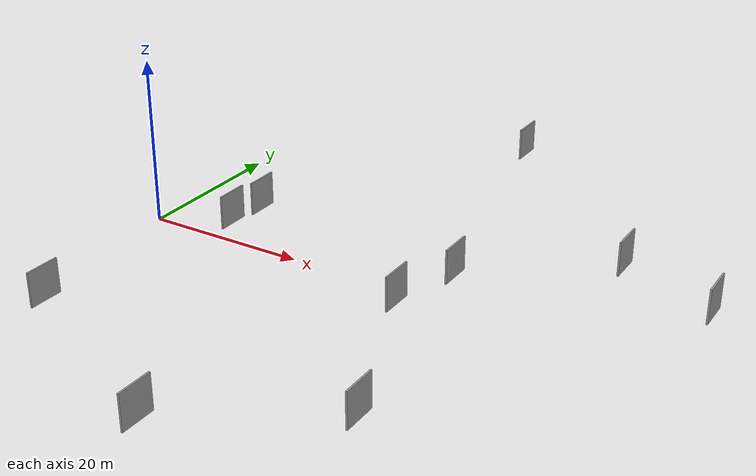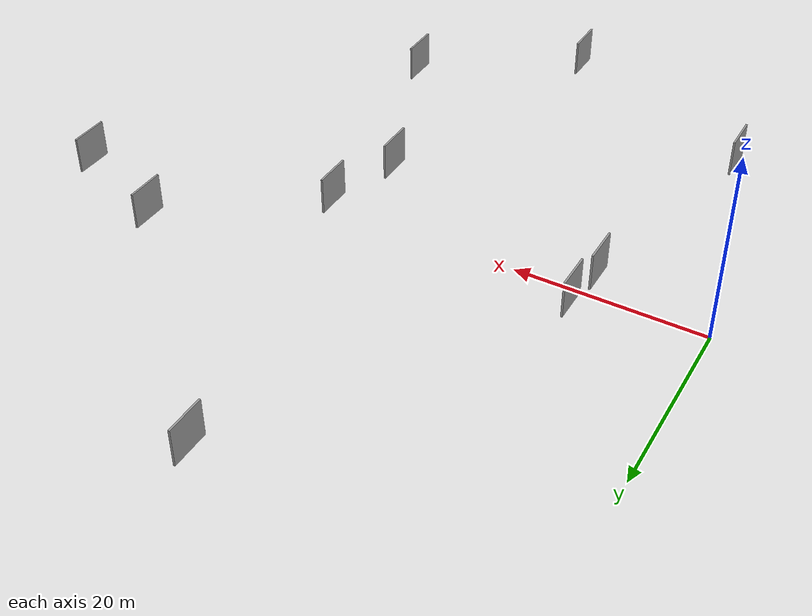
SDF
<sdf version="1.6">
 <world name="default">
  <scene>
   <sky><clouds><speed>12</speed></clouds></sky>
   <ambient>0.4 0.4 0.4 1</ambient>
   <background>0.7 0.7 0.7 1</background>
   <shadows>1</shadows>
  </scene>
  <gravity>0 0 -9.8066</gravity>
  <magnetic_field>6e-06 2.3e-05 -4.2e-05</magnetic_field>
  <physics default="0" name="default_physics" type="ode">
   <ode>
    <solver>
     <type>quick</type>
     <iters>10</iters>
     <sor>1.0</sor>
     <use_dynamic_moi_rescaling>0</use_dynamic_moi_rescaling>
    </solver>
    <constraints>
     <cfm>0</cfm>
     <erp>0.2</erp>
     <contact_max_correcting_vel>100</contact_max_correcting_vel>
     <contact_surface_layer>0.001</contact_surface_layer>
    </constraints>
   </ode>
   <max_step_size>0.004</max_step_size>
   <real_time_factor>1</real_time_factor>
   <real_time_update_rate>250</real_time_update_rate>
  </physics>
  <light name="sun" type="directional">
   <pose>0 0 10 0 0 0</pose>
   <diffuse>0.8 0.8 0.8 1</diffuse>
   <specular>0.2 0.2 0.2 1</specular>
   <attenuation>
    <range>1000</range>
    <constant>0.9</constant>
    <linear>0.01</linear>
    <quadratic>0.001</quadratic>
   </attenuation>
   <direction>-0.5 0.1 -0.9</direction>
  </light>
  <model name="grey_wall_1">
   <static>1</static>
   <pose>11.4034 -0.0245 2.5 0.000000 0.000000 1.570796</pose>
   <link name="link">
    <pose>0 0 2.00 0 0 0</pose>
    <collision name="collision"><geometry><box><size>4.00 0.2 4.00</size></box></geometry></collision>
    <visual name="visual">
     <cast_shadows>0</cast_shadows>
     <geometry><box><size>4.00 0.2 4.00</size></box></geometry>
     <material>
      <script>
       <uri>model://grey_wall/materials/scripts</uri>
       <uri>model://grey_wall/materials/textures</uri>
       <name>vrc/grey_wall</name>
      </script>
     </material>
    </visual>
   </link>
  </model>
  <model name="grey_wall_2">
   <static>1</static>
   <pose>54.0285 13.3249 2.5 0.000000 0.000000 1.570796</pose>
   <link name="link">
    <pose>0 0 2.00 0 0 0</pose>
    <collision name="collision"><geometry><box><size>4.00 0.2 4.00</size></box></geometry></collision>
    <visual name="visual">
     <cast_shadows>0</cast_shadows>
     <geometry><box><size>4.00 0.2 4.00</size></box></geometry>
     <material>
      <script>
       <uri>model://grey_wall/materials/scripts</uri>
       <uri>model://grey_wall/materials/textures</uri>
       <name>vrc/grey_wall</name>
      </script>
     </material>
    </visual>
   </link>
  </model>
  <model name="grey_wall_3">
   <static>1</static>
   <pose>44.6311 -24.8346 2.5 0.000000 0.000000 1.570796</pose>
   <link name="link">
    <pose>0 0 2.00 0 0 0</pose>
    <collision name="collision"><geometry><box><size>4.00 0.2 4.00</size></box></geometry></collision>
    <visual name="visual">
     <cast_shadows>0</cast_shadows>
     <geometry><box><size>4.00 0.2 4.00</size></box></geometry>
     <material>
      <script>
       <uri>model://grey_wall/materials/scripts</uri>
       <uri>model://grey_wall/materials/textures</uri>
       <name>vrc/grey_wall</name>
      </script>
     </material>
    </visual>
   </link>
  </model>
  <model name="grey_wall_4">
   <static>1</static>
   <pose>31.3866 36.3756 2.5 0.000000 0.000000 1.570796</pose>
   <link name="link">
    <pose>0 0 2.00 0 0 0</pose>
    <collision name="collision"><geometry><box><size>4.00 0.2 4.00</size></box></geometry></collision>
    <visual name="visual">
     <cast_shadows>0</cast_shadows>
     <geometry><box><size>4.00 0.2 4.00</size></box></geometry>
     <material>
      <script>
       <uri>model://grey_wall/materials/scripts</uri>
       <uri>model://grey_wall/materials/textures</uri>
       <name>vrc/grey_wall</name>
      </script>
     </material>
    </visual>
   </link>
  </model>
  <model name="grey_wall_5">
   <static>1</static>
   <pose>12.0496 4.7691 2.5 0.000000 0.000000 1.570796</pose>
   <link name="link">
    <pose>0 0 2.00 0 0 0</pose>
    <collision name="collision"><geometry><box><size>4.00 0.2 4.00</size></box></geometry></collision>
    <visual name="visual">
     <cast_shadows>0</cast_shadows>
     <geometry><box><size>4.00 0.2 4.00</size></box></geometry>
     <material>
      <script>
       <uri>model://grey_wall/materials/scripts</uri>
       <uri>model://grey_wall/materials/textures</uri>
       <name>vrc/grey_wall</name>
      </script>
     </material>
    </visual>
   </link>
  </model>
  <model name="grey_wall_6">
   <static>1</static>
   <pose>6.1933 -24.3567 2.5 0.000000 0.000000 1.570796</pose>
   <link name="link">
    <pose>0 0 2.00 0 0 0</pose>
    <collision name="collision"><geometry><box><size>4.00 0.2 4.00</size></box></geometry></collision>
    <visual name="visual">
     <cast_shadows>0</cast_shadows>
     <geometry><box><size>4.00 0.2 4.00</size></box></geometry>
     <material>
      <script>
       <uri>model://grey_wall/materials/scripts</uri>
       <uri>model://grey_wall/materials/textures</uri>
       <name>vrc/grey_wall</name>
      </script>
     </material>
    </visual>
   </link>
  </model>
  <model name="grey_wall_7">
   <static>1</static>
   <pose>37.0758 -6.0818 2.5 0.000000 0.000000 1.570796</pose>
   <link name="link">
    <pose>0 0 2.00 0 0 0</pose>
    <collision name="collision"><geometry><box><size>4.00 0.2 4.00</size></box></geometry></collision>
    <visual name="visual">
     <cast_shadows>0</cast_shadows>
     <geometry><box><size>4.00 0.2 4.00</size></box></geometry>
     <material>
      <script>
       <uri>model://grey_wall/materials/scripts</uri>
       <uri>model://grey_wall/materials/textures</uri>
       <name>vrc/grey_wall</name>
      </script>
     </material>
    </visual>
   </link>
  </model>
  <model name="grey_wall_8">
   <static>1</static>
   <pose>65.2506 8.5879 2.5 0.000000 0.000000 1.570796</pose>
   <link name="link">
    <pose>0 0 2.00 0 0 0</pose>
    <collision name="collision"><geometry><box><size>4.00 0.2 4.00</size></box></geometry></collision>
    <visual name="visual">
     <cast_shadows>0</cast_shadows>
     <geometry><box><size>4.00 0.2 4.00</size></box></geometry>
     <material>
      <script>
       <uri>model://grey_wall/materials/scripts</uri>
       <uri>model://grey_wall/materials/textures</uri>
       <name>vrc/grey_wall</name>
      </script>
     </material>
    </visual>
   </link>
  </model>
  <model name="grey_wall_9">
   <static>1</static>
   <pose>28.5014 -35.2994 2.5 0.000000 0.000000 1.570796</pose>
   <link name="link">
    <pose>0 0 2.00 0 0 0</pose>
    <collision name="collision"><geometry><box><size>4.00 0.2 4.00</size></box></geometry></collision>
    <visual name="visual">
     <cast_shadows>0</cast_shadows>
     <geometry><box><size>4.00 0.2 4.00</size></box></geometry>
     <material>
      <script>
       <uri>model://grey_wall/materials/scripts</uri>
       <uri>model://grey_wall/materials/textures</uri>
       <name>vrc/grey_wall</name>
      </script>
     </material>
    </visual>
   </link>
  </model>
  <model name="grey_wall_10">
   <static>1</static>
   <pose>39.3953 2.1092 2.5 0.000000 0.000000 1.570796</pose>
   <link name="link">
    <pose>0 0 2.00 0 0 0</pose>
    <collision name="collision"><geometry><box><size>4.00 0.2 4.00</size></box></geometry></collision>
    <visual name="visual">
     <cast_shadows>0</cast_shadows>
     <geometry><box><size>4.00 0.2 4.00</size></box></geometry>
     <material>
      <script>
       <uri>model://grey_wall/materials/scripts</uri>
       <uri>model://grey_wall/materials/textures</uri>
       <name>vrc/grey_wall</name>
      </script>
     </material>
    </visual>
   </link>
  </model>
 </world>
</sdf>
